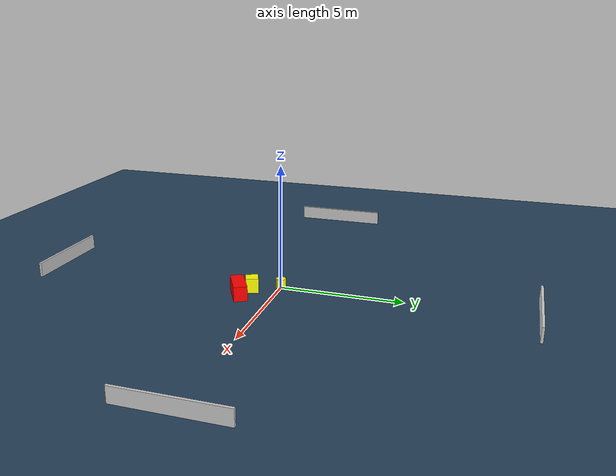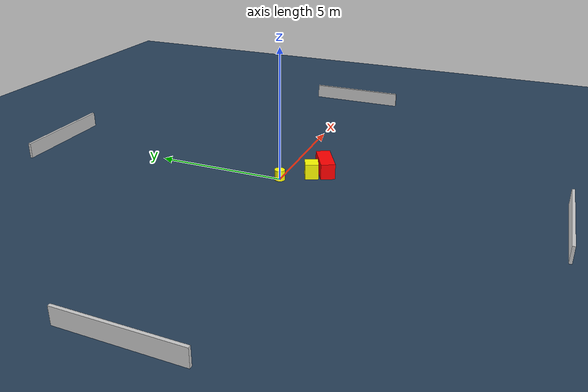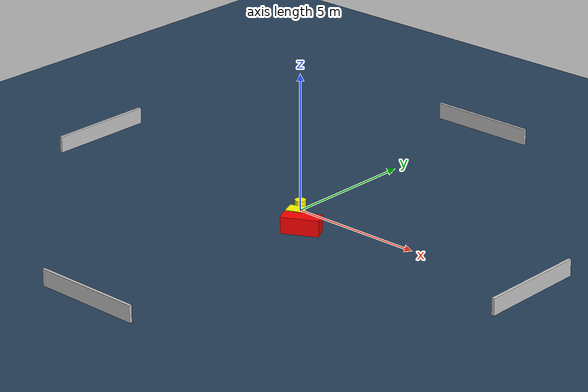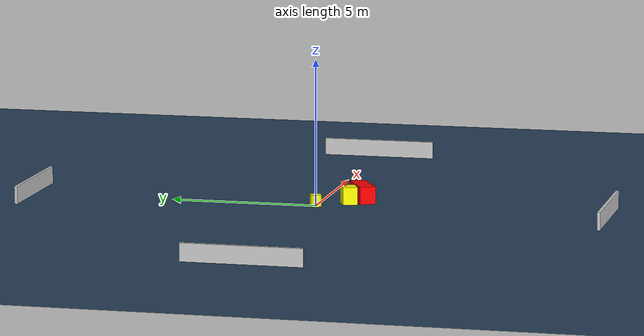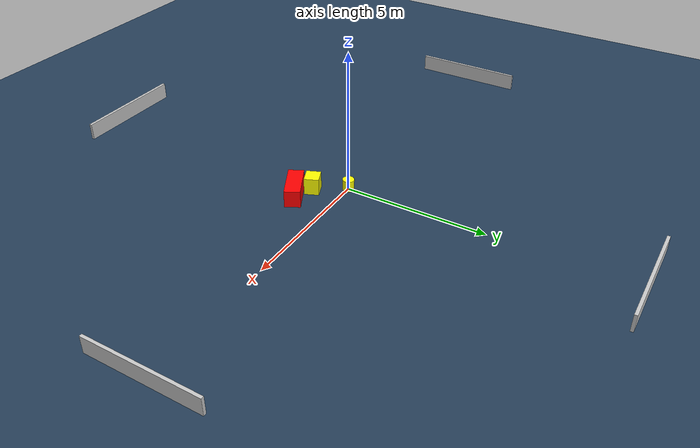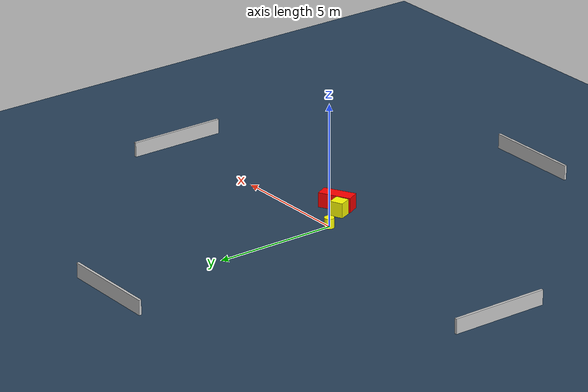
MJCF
<?xml version="1.0" ?>
<mujoco model="generated_environment">
  <option timestep="0.01" integrator="RK4" cone="elliptic"/>
  <default>
    <geom density="1"/>
  </default>
  <asset>
    <texture builtin="gradient" height="3072" name="skybox" rgb1="0.3 0.5 0.7" rgb2="0 0 0" type="skybox" width="512"/>
    <texture builtin="checker" height="300" name="groundplane" rgb1="0.2 0.3 0.4" rgb2="0.1 0.2 0.3" type="2d" width="300"/>
    <material name="groundplane" reflectance="0.2" texrepeat="5 5" texture="groundplane"/>
  </asset>
  <worldbody>
    <light dir="0 0 -1" directional="true" pos="0 0 1.5"/>
    <geom condim="3" friction="0.5 0.005 0.001" material="groundplane" name="floor" pos="0 0 0" size="0 0 0.05" type="plane"/>
    <body name="walls">
      <geom name="wall_1" condim="4" pos="-10.0 0.0 0.3" rgba="0.800000011920929 0.800000011920929 0.800000011920929 1.0" size="0.05 2.0 0.3" type="box"/>
      <geom name="wall_2" condim="4" pos="10.0 0.0 0.3" rgba="0.800000011920929 0.800000011920929 0.800000011920929 1.0" size="0.05 2.0 0.3" type="box"/>
      <geom name="wall_3" condim="4" pos="0.0 -10.0 0.3" rgba="0.800000011920929 0.800000011920929 0.800000011920929 1.0" size="2.0 0.05 0.3" type="box"/>
      <geom name="wall_4" condim="4" pos="0.0 10.0 0.3" rgba="0.800000011920929 0.800000011920929 0.800000011920929 1.0" size="2.0 0.05 0.3" type="box"/>
    </body>
    <body name="robot">
      <joint name="joint_x" type="slide" pos="0 0 0" axis="1 0 0"/>
      <joint name="joint_y" type="slide" pos="0 0 0" axis="0 1 0"/>
      <geom name="robot" type="cylinder" pos="0.0 0.0 0.2" size="0.2 0.2 0.0" mass="5.0" friction="1.0 0.005 0.0001" condim="4" rgba="1.0 1.0 0.0 1.0"/>
    </body>
    <body name="obstacle_1_movable">
      <geom name="obstacle_1_movable" condim="4" pos="0.6801491845328597 -1.0007568573234484 0.3" euler="0 0 22.98724060090879" friction="0.0 0.005 0.001" rgba="1.0 1.0 0.0 1.0" size="0.2680271701436678 0.25156357778575655 0.3" type="box" mass="0.1"/>
      <joint type="free"/>
    </body>
    <body name="obstacle_2_static">
      <geom name="obstacle_2_static" condim="4" pos="1.2676102773754465 -1.3460676814060848 0.3" euler="0 0 207.75905165657457" friction="0.0 0.005 0.001" rgba="1.0 0.0 0.0 1.0" size="0.6696890570782724 0.2712982792565556 0.3" type="box"/>
    </body>
  </worldbody>
  <actuator>
    <motor name="actuator_x" joint="joint_x" gear="1" ctrlrange="-1 1"/>
    <motor name="actuator_y" joint="joint_y" gear="1" ctrlrange="-1 1"/>
  </actuator>
</mujoco>
